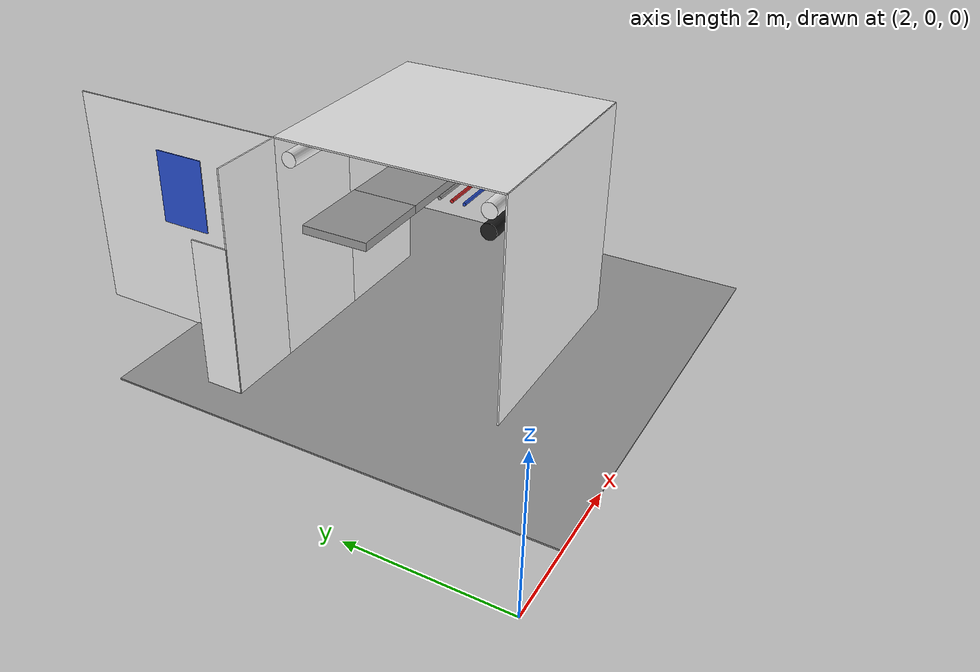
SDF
<sdf version="1.6">
 <world name="default">
  <model name="ceiling_1_1_1_2_1">
   <pose>4.0 3.0 2.55 0.0 0.0 -1.57</pose>
   <link name="link_1">
    <visual name="visual">
     <geometry><box><size>0.8 1 0.1</size></box></geometry>
     <material>
      <script><uri>file://media/materials/scripts/gazebo.material</uri><name>Gazebo/Grey</name></script>
     </material>
    </visual>
    <collision name="collision"><geometry><box><size>0.8 1 0.1</size></box></geometry></collision>
   </link>
   <static>1</static>
  </model>
  <model name="wall_left_front_left_1_1_0_1">
   <static>1</static>
   <pose>4.0 4.5 1.5 0.0 0.0 0.0</pose>
   <link name="link">
    <collision name="collision"><geometry><box><size>1.0 0.02 3.0</size></box></geometry></collision>
    <visual name="visual">
     <material>
      <script><name>Gazebo/White</name><uri>file://media/materials/scripts/gazebo.material</uri></script>
     </material>
     <geometry><box><size>1.0 0.02 3.0</size></box></geometry>
    </visual>
   </link>
  </model>
  <model name="wall_left_inside_left_1_1_0_1">
   <static>1</static>
   <pose>3.5 4.75 1.0 0.0 0.0 -1.57</pose>
   <link name="link">
    <collision name="collision"><geometry><box><size>0.5 0.02 2</size></box></geometry></collision>
    <visual name="visual">
     <material>
      <script><name>Gazebo/White</name><uri>file://media/materials/scripts/gazebo.material</uri></script>
     </material>
     <geometry><box><size>0.5 0.02 2</size></box></geometry>
    </visual>
   </link>
  </model>
  <model name="wall_right_2_1_0_1">
   <static>1</static>
   <pose>6.0 1.5 1.5 0.0 0.0 0.0</pose>
   <link name="link">
    <collision name="collision"><geometry><box><size>3.0 0.02 3.0</size></box></geometry></collision>
    <visual name="visual">
     <material>
      <script><name>Gazebo/White</name><uri>file://media/materials/scripts/gazebo.material</uri></script>
     </material>
     <geometry><box><size>3.0 0.02 3.0</size></box></geometry>
    </visual>
   </link>
  </model>
  <model name="wall_left_2_1_0_1">
   <static>1</static>
   <pose>6.0 4.5 1.5 0.0 0.0 0.0</pose>
   <link name="link">
    <collision name="collision"><geometry><box><size>3.0 0.02 3.0</size></box></geometry></collision>
    <visual name="visual">
     <material>
      <script><name>Gazebo/White</name><uri>file://media/materials/scripts/gazebo.material</uri></script>
     </material>
     <geometry><box><size>3.0 0.02 3.0</size></box></geometry>
    </visual>
   </link>
  </model>
  <model name="wall_top_2_1_0_1">
   <static>1</static>
   <pose>6.0 3.0 3.0 1.57 0.0 -1.57</pose>
   <link name="link">
    <collision name="collision"><geometry><box><size>3.0 0.02 3.0</size></box></geometry></collision>
    <visual name="visual">
     <material>
      <script><name>Gazebo/White</name><uri>file://media/materials/scripts/gazebo.material</uri></script>
     </material>
     <geometry><box><size>3.0 0.02 3.0</size></box></geometry>
    </visual>
   </link>
  </model>
  <model name="ceiling_1_2_1_0_1">
   <pose>6.0 3.0 2.55 0.0 0.0 -1.57</pose>
   <link name="link_1">
    <visual name="visual">
     <geometry><box><size>0.8 1 0.1</size></box></geometry>
     <material>
      <script><uri>file://media/materials/scripts/gazebo.material</uri><name>Gazebo/Grey</name></script>
     </material>
    </visual>
    <collision name="collision"><geometry><box><size>0.8 1 0.1</size></box></geometry></collision>
   </link>
   <static>1</static>
  </model>
  <model name="ceiling_1_2_1_1_1">
   <pose>5.0 3.0 2.55 0.0 0.0 -1.57</pose>
   <link name="link_1">
    <visual name="visual">
     <geometry><box><size>0.8 1 0.1</size></box></geometry>
     <material>
      <script><uri>file://media/materials/scripts/gazebo.material</uri><name>Gazebo/Grey</name></script>
     </material>
    </visual>
    <collision name="collision"><geometry><box><size>0.8 1 0.1</size></box></geometry></collision>
   </link>
   <static>1</static>
  </model>
  <model name="ceiling_1_2_1_2_1">
   <pose>7.0 3.0 2.55 0.0 0.0 -1.57</pose>
   <link name="link_1">
    <visual name="visual">
     <geometry><box><size>0.8 1 0.1</size></box></geometry>
     <material>
      <script><uri>file://media/materials/scripts/gazebo.material</uri><name>Gazebo/Grey</name></script>
     </material>
    </visual>
    <collision name="collision"><geometry><box><size>0.8 1 0.1</size></box></geometry></collision>
   </link>
   <static>1</static>
  </model>
  <model name="white_pipe_left_2_1_0_1">
   <static>1</static>
   <pose>6.0 3.0 2.76 0.0 0.0 -1.57</pose>
   <link name="link_0">
    <visual name="visual">
     <pose>-1.3 0 0 1.57 0 0</pose>
     <geometry><cylinder><radius>0.1</radius><length>3.0</length></cylinder></geometry>
     <material>
      <script><uri>file://media/materials/scripts/gazebo.material</uri><name>Gazebo/White</name></script>
     </material>
    </visual>
    <collision name="collision">
     <pose>-1.3 0 0 1.57 0 0</pose>
     <geometry><cylinder><radius>0.1</radius><length>3.0</length></cylinder></geometry>
    </collision>
   </link>
  </model>
  <model name="white_pipe_right_2_1_0_1">
   <static>1</static>
   <pose>6.0 3.0 2.76 0.0 0.0 -1.57</pose>
   <link name="link_0">
    <visual name="visual">
     <pose>1.3 0 0 1.57 0 0</pose>
     <geometry><cylinder><radius>0.1</radius><length>3.0</length></cylinder></geometry>
     <material>
      <script><uri>file://media/materials/scripts/gazebo.material</uri><name>Gazebo/White</name></script>
     </material>
    </visual>
    <collision name="collision">
     <pose>1.3 0 0 1.57 0 0</pose>
     <geometry><cylinder><radius>0.1</radius><length>3.0</length></cylinder></geometry>
    </collision>
   </link>
  </model>
  <model name="black_pipe_right_2_1_0_1">
   <static>1</static>
   <pose>6.0 3.0 2.76 0.0 0.0 -1.57</pose>
   <link name="link_0">
    <visual name="visual">
     <pose>1.3 0 -0.25 1.57 0 0</pose>
     <geometry><cylinder><radius>0.1</radius><length>3.0</length></cylinder></geometry>
     <material>
      <script><uri>file://media/materials/scripts/gazebo.material</uri><name>Gazebo/Black</name></script>
     </material>
    </visual>
    <collision name="collision">
     <pose>1.3 0 -0.25 1.57 0 0</pose>
     <geometry><cylinder><radius>0.1</radius><length>3.0</length></cylinder></geometry>
    </collision>
   </link>
  </model>
  <model name="grey_pipe_right_2_1_0_1">
   <static>1</static>
   <pose>6.0 3.0 2.76 0.0 0.0 -1.57</pose>
   <link name="link_0">
    <visual name="visual">
     <pose>0.7 0 0 1.57 0 0</pose>
     <geometry><cylinder><radius>0.02</radius><length>3.0</length></cylinder></geometry>
     <material>
      <script><uri>file://media/materials/scripts/gazebo.material</uri><name>Gazebo/Grey</name></script>
     </material>
    </visual>
    <collision name="collision">
     <pose>0.7 0 0 1.57 0 0</pose>
     <geometry><cylinder><radius>0.02</radius><length>3.0</length></cylinder></geometry>
    </collision>
   </link>
  </model>
  <model name="red_pipe_right_2_1_0_1">
   <static>1</static>
   <pose>6.0 3.0 2.76 0.0 0.0 -1.57</pose>
   <link name="link_0">
    <visual name="visual">
     <pose>0.85 0 0 1.57 0 0</pose>
     <geometry><cylinder><radius>0.02</radius><length>3.0</length></cylinder></geometry>
     <material>
      <script><uri>file://media/materials/scripts/gazebo.material</uri><name>Gazebo/Red</name></script>
     </material>
    </visual>
    <collision name="collision">
     <pose>0.85 0 0 1.57 0 0</pose>
     <geometry><cylinder><radius>0.02</radius><length>3.0</length></cylinder></geometry>
    </collision>
   </link>
  </model>
  <model name="blue_pipe_right_2_1_0_1">
   <static>1</static>
   <pose>6.0 3.0 2.76 0.0 0.0 -1.57</pose>
   <link name="link_0">
    <visual name="visual">
     <pose>1 0 0 1.57 0 0</pose>
     <geometry><cylinder><radius>0.02</radius><length>3.0</length></cylinder></geometry>
     <material>
      <script><uri>file://media/materials/scripts/gazebo.material</uri><name>Gazebo/Blue</name></script>
     </material>
    </visual>
    <collision name="collision">
     <pose>1 0 0 1.57 0 0</pose>
     <geometry><cylinder><radius>0.02</radius><length>3.0</length></cylinder></geometry>
    </collision>
   </link>
  </model>
  <model name="wall_bottom_2_1_0_1">
   <static>1</static>
   <pose>6.0 3.0 0.0 0.0 0.0 -1.57</pose>
   <link name="link">
    <collision name="collision"><geometry><box><size>6.0 6.0 0.02</size></box></geometry></collision>
    <visual name="visual">
     <material>
      <script><name>Gazebo/Grey</name><uri>file://media/materials/scripts/gazebo.material</uri></script>
     </material>
     <geometry><box><size>6.0 6.0 0.02</size></box></geometry>
    </visual>
   </link>
  </model>
  <model name="wall_front_2_2_0_2">
   <static>1</static>
   <pose>4.5 6.0 1.5 0.0 0.0 1.57</pose>
   <link name="link">
    <collision name="collision"><geometry><box><size>3.0 0.02 3.0</size></box></geometry></collision>
    <visual name="visual">
     <material>
      <script><name>Gazebo/White</name><uri>file://media/materials/scripts/gazebo.material</uri></script>
     </material>
     <geometry><box><size>3.0 0.02 3.0</size></box></geometry>
    </visual>
   </link>
  </model>
  <model name="wall_left_2_2_0_2">
   <static>1</static>
   <pose>6.0 4.5 1.5 0.0 0.0 3.14</pose>
   <link name="link">
    <collision name="collision"><geometry><box><size>3.0 0.02 3.0</size></box></geometry></collision>
    <visual name="visual">
     <material>
      <script><name>Gazebo/White</name><uri>file://media/materials/scripts/gazebo.material</uri></script>
     </material>
     <geometry><box><size>3.0 0.02 3.0</size></box></geometry>
    </visual>
   </link>
  </model>
  <model name="panel_2_2_0_2">
   <static>1</static>
   <pose>4.5 6.0 1.95 0.0 0.0 3.14</pose>
   <link name="link">
    <collision name="collision"><geometry><box><size>0.04 0.7 1</size></box></geometry></collision>
    <visual name="visual">
     <material>
      <script><name>Gazebo/Blue</name><uri>file://media/materials/scripts/gazebo.material</uri></script>
     </material>
     <geometry><box><size>0.04 0.7 1</size></box></geometry>
    </visual>
   </link>
  </model>
 </world>
</sdf>
